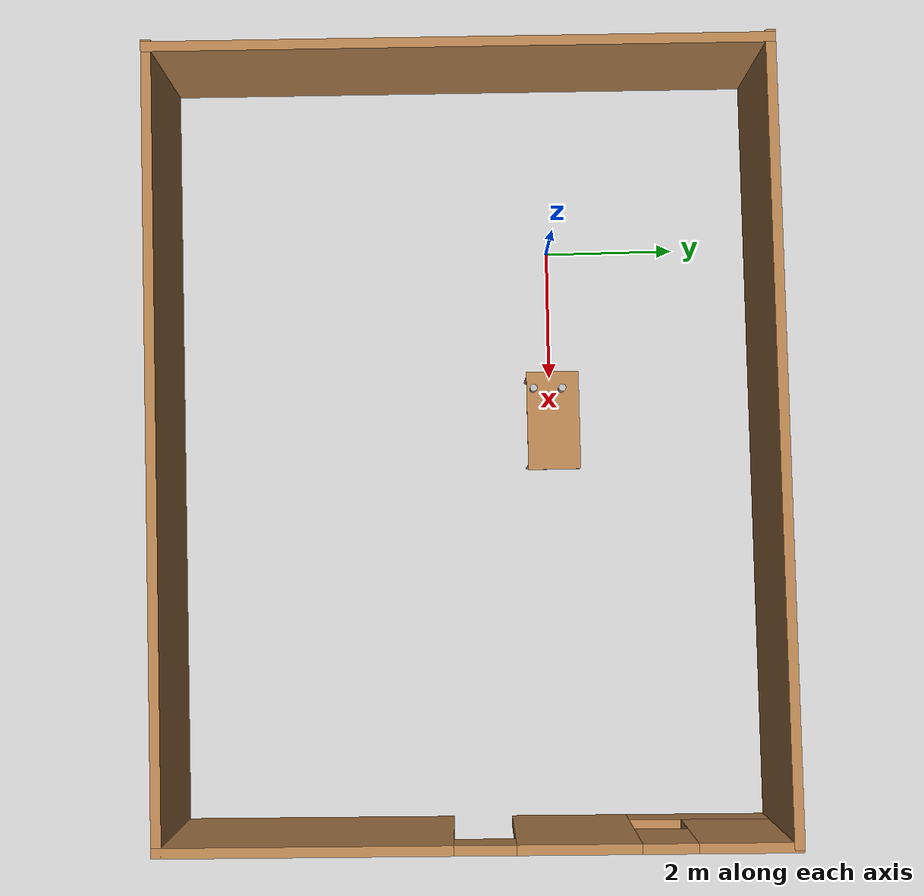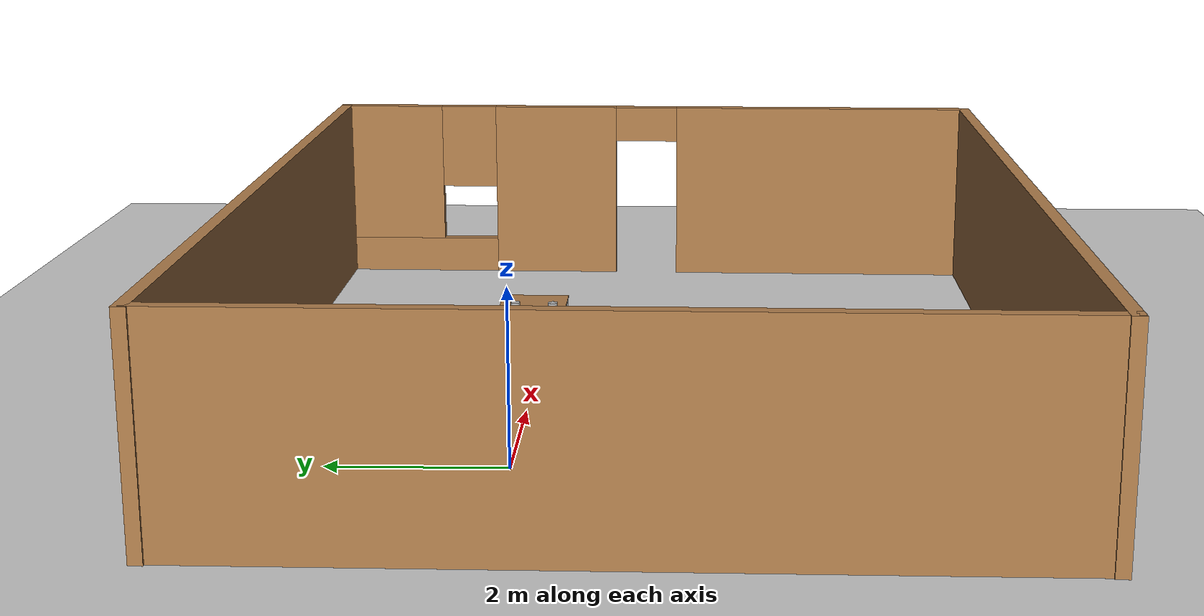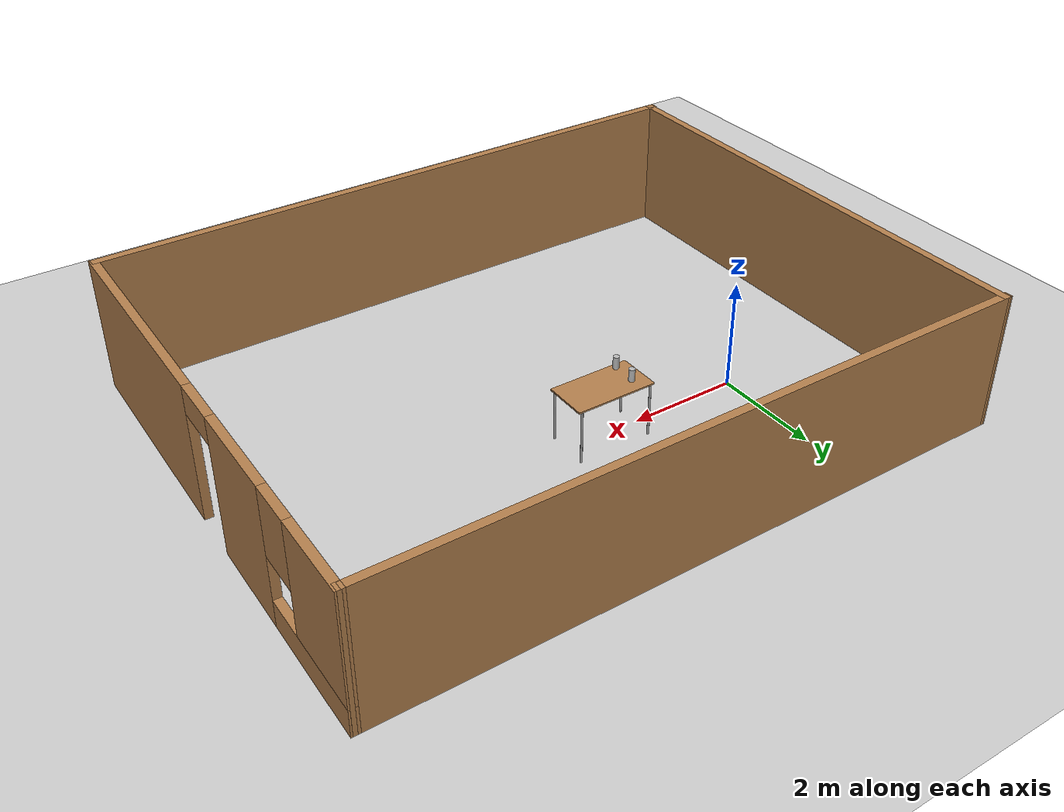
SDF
<sdf version="1.6">
 <world name="default">
  <light name="sun" type="directional">
   <pose>0 0 10 0 -0 0</pose>
   <diffuse>0.8 0.8 0.8 1</diffuse>
   <specular>0.1 0.1 0.1 1</specular>
   <attenuation>
    <range>1000</range>
    <constant>0.9</constant>
    <linear>0.01</linear>
    <quadratic>0.001</quadratic>
   </attenuation>
   <direction>-0.5 0.5 -1</direction>
  </light>
  <gravity>0 0 -9.8</gravity>
  <magnetic_field>6e-06 2.3e-05 -4.2e-05</magnetic_field>
  <atmosphere type="adiabatic"/>
  <physics name="default_physics" default="0" type="ode">
   <max_step_size>0.001</max_step_size>
   <real_time_factor>1</real_time_factor>
   <real_time_update_rate>1000</real_time_update_rate>
  </physics>
  <scene><ambient>0.4 0.4 0.4 1</ambient><background>0.7 0.7 0.7 1</background><shadows>1</shadows></scene>
  <spherical_coordinates>
   <surface_model>EARTH_WGS84</surface_model>
   <latitude_deg>0</latitude_deg>
   <longitude_deg>0</longitude_deg>
   <elevation>0</elevation>
   <heading_deg>0</heading_deg>
  </spherical_coordinates>
  <model name="test">
   <pose>3.11511 -1.32327 0 0 -0 0</pose>
   <link name="Wall_0">
    <collision name="Wall_0_Collision">
     <geometry><box><size>11.8635 0.15 2.5</size></box></geometry>
     <pose>0 0 1.25 0 -0 0</pose>
    </collision>
    <visual name="Wall_0_Visual">
     <pose>0 0 1.25 0 -0 0</pose>
     <geometry><box><size>11.8635 0.15 2.5</size></box></geometry>
     <material>
      <script><uri>file://media/materials/scripts/gazebo.material</uri><name>Gazebo/Wood</name></script>
      <ambient>1 1 1 1</ambient>
     </material>
     <meta><layer>0</layer></meta>
    </visual>
    <pose>0.013463 4.5716 0 0 0 -3.14018</pose>
   </link>
   <link name="Wall_1">
    <collision name="Wall_1_Collision">
     <geometry><box><size>9.29344 0.15 2.5</size></box></geometry>
     <pose>0 0 1.25 0 -0 0</pose>
    </collision>
    <visual name="Wall_1_Visual">
     <pose>0 0 1.25 0 -0 0</pose>
     <geometry><box><size>9.29344 0.15 2.5</size></box></geometry>
     <material>
      <script><uri>file://media/materials/scripts/gazebo.material</uri><name>Gazebo/Wood</name></script>
      <ambient>1 1 1 1</ambient>
     </material>
     <meta><layer>0</layer></meta>
    </visual>
    <pose>-5.84395 -0.008399 0 0 0 -1.5776</pose>
   </link>
   <link name="Wall_2">
    <collision name="Wall_2_Collision">
     <geometry><box><size>11.8003 0.15 2.5</size></box></geometry>
     <pose>0 0 1.25 0 -0 0</pose>
    </collision>
    <visual name="Wall_2_Visual">
     <pose>0 0 1.25 0 -0 0</pose>
     <geometry><box><size>11.8003 0.15 2.5</size></box></geometry>
     <material>
      <script><uri>file://media/materials/scripts/gazebo.material</uri><name>Gazebo/Wood</name></script>
      <ambient>1 1 1 1</ambient>
     </material>
     <meta><layer>0</layer></meta>
    </visual>
    <pose>-0.076389 -4.57179 0 0 -0 0.001425</pose>
   </link>
   <link name="Wall_3">
    <pose>5.83789 0.008202 0 0 -0 1.55708</pose>
    <visual name="Wall_3_Visual_0">
     <pose>-2.4968 0 1.25 0 -0 0</pose>
     <geometry><box><size>4.29986 0.15 2.5</size></box></geometry>
     <material>
      <script><uri>file://media/materials/scripts/gazebo.material</uri><name>Gazebo/Wood</name></script>
      <ambient>1 1 1 1</ambient>
     </material>
     <meta><layer>0</layer></meta>
    </visual>
    <collision name="Wall_3_Collision_0">
     <geometry><box><size>4.29986 0.15 2.5</size></box></geometry>
     <pose>-2.4968 0 1.25 0 -0 0</pose>
    </collision>
    <visual name="Wall_3_Visual_1">
     <pose>1.44758 0 1.25 0 -0 0</pose>
     <geometry><box><size>1.78888 0.15 2.5</size></box></geometry>
     <material>
      <script><uri>file://media/materials/scripts/gazebo.material</uri><name>Gazebo/Wood</name></script>
      <ambient>1 1 1 1</ambient>
     </material>
     <meta><layer>0</layer></meta>
    </visual>
    <collision name="Wall_3_Collision_1">
     <geometry><box><size>1.78888 0.15 2.5</size></box></geometry>
     <pose>1.44758 0 1.25 0 -0 0</pose>
    </collision>
    <visual name="Wall_3_Visual_2">
     <pose>3.49437 0 0.25 0 -0 0</pose>
     <geometry><box><size>2.30471 0.15 0.5</size></box></geometry>
     <material>
      <script><uri>file://media/materials/scripts/gazebo.material</uri><name>Gazebo/Wood</name></script>
      <ambient>1 1 1 1</ambient>
     </material>
     <meta><layer>0</layer></meta>
    </visual>
    <collision name="Wall_3_Collision_2">
     <geometry><box><size>2.30471 0.15 0.5</size></box></geometry>
     <pose>3.49437 0 0.25 0 -0 0</pose>
    </collision>
    <visual name="Wall_3_Visual_3">
     <pose>3.89437 0 1.5 0 -0 0</pose>
     <geometry><box><size>1.50471 0.15 2</size></box></geometry>
     <material>
      <script><uri>file://media/materials/scripts/gazebo.material</uri><name>Gazebo/Wood</name></script>
      <ambient>1 1 1 1</ambient>
     </material>
     <meta><layer>0</layer></meta>
    </visual>
    <collision name="Wall_3_Collision_3">
     <geometry><box><size>1.50471 0.15 2</size></box></geometry>
     <pose>3.89437 0 1.5 0 -0 0</pose>
    </collision>
    <visual name="Wall_3_Visual_4">
     <pose>2.74201 0 1.9 0 -0 0</pose>
     <geometry><box><size>0.8 0.15 1.2</size></box></geometry>
     <material>
      <script><uri>file://media/materials/scripts/gazebo.material</uri><name>Gazebo/Wood</name></script>
      <ambient>1 1 1 1</ambient>
     </material>
     <meta><layer>0</layer></meta>
    </visual>
    <collision name="Wall_3_Collision_4">
     <geometry><box><size>0.8 0.15 1.2</size></box></geometry>
     <pose>2.74201 0 1.9 0 -0 0</pose>
    </collision>
    <visual name="Wall_3_Visual_5">
     <pose>0.103134 0 2.25 0 -0 0</pose>
     <geometry><box><size>0.9 0.15 0.5</size></box></geometry>
     <material>
      <script><uri>file://media/materials/scripts/gazebo.material</uri><name>Gazebo/Wood</name></script>
      <ambient>1 1 1 1</ambient>
     </material>
     <meta><layer>0</layer></meta>
    </visual>
    <collision name="Wall_3_Collision_5">
     <geometry><box><size>0.9 0.15 0.5</size></box></geometry>
     <pose>0.103134 0 2.25 0 -0 0</pose>
    </collision>
   </link>
   <static>1</static>
  </model>
  <model name="table">
   <static>1</static>
   <link name="link">
    <collision name="surface">
     <pose>0 0 1 0 -0 0</pose>
     <geometry><box><size>1.5 0.8 0.03</size></box></geometry>
     <surface><friction><ode><mu>0.6</mu><mu2>0.6</mu2></ode></friction></surface>
    </collision>
    <visual name="visual1">
     <pose>0 0 1 0 -0 0</pose>
     <geometry><box><size>1.5 0.8 0.03</size></box></geometry>
     <material>
      <script><uri>file://media/materials/scripts/gazebo.material</uri><name>Gazebo/Wood</name></script>
     </material>
    </visual>
    <collision name="front_left_leg">
     <pose>0.68 0.38 0.5 0 -0 0</pose>
     <geometry><cylinder><radius>0.02</radius><length>1</length></cylinder></geometry>
    </collision>
    <visual name="front_left_leg">
     <pose>0.68 0.38 0.5 0 -0 0</pose>
     <geometry><cylinder><radius>0.02</radius><length>1</length></cylinder></geometry>
     <material>
      <script><uri>file://media/materials/scripts/gazebo.material</uri><name>Gazebo/Grey</name></script>
     </material>
    </visual>
    <collision name="front_right_leg">
     <pose>0.68 -0.38 0.5 0 -0 0</pose>
     <geometry><cylinder><radius>0.02</radius><length>1</length></cylinder></geometry>
    </collision>
    <visual name="front_right_leg">
     <pose>0.68 -0.38 0.5 0 -0 0</pose>
     <geometry><cylinder><radius>0.02</radius><length>1</length></cylinder></geometry>
     <material>
      <script><uri>file://media/materials/scripts/gazebo.material</uri><name>Gazebo/Grey</name></script>
     </material>
    </visual>
    <collision name="back_right_leg">
     <pose>-0.68 -0.38 0.5 0 -0 0</pose>
     <geometry><cylinder><radius>0.02</radius><length>1</length></cylinder></geometry>
    </collision>
    <visual name="back_right_leg">
     <pose>-0.68 -0.38 0.5 0 -0 0</pose>
     <geometry><cylinder><radius>0.02</radius><length>1</length></cylinder></geometry>
     <material>
      <script><uri>file://media/materials/scripts/gazebo.material</uri><name>Gazebo/Grey</name></script>
     </material>
    </visual>
    <collision name="back_left_leg">
     <pose>-0.68 0.38 0.5 0 -0 0</pose>
     <geometry><cylinder><radius>0.02</radius><length>1</length></cylinder></geometry>
    </collision>
    <visual name="back_left_leg">
     <pose>-0.68 0.38 0.5 0 -0 0</pose>
     <geometry><cylinder><radius>0.02</radius><length>1</length></cylinder></geometry>
     <material>
      <script><uri>file://media/materials/scripts/gazebo.material</uri><name>Gazebo/Grey</name></script>
     </material>
    </visual>
   </link>
   <pose>2.74669 -0.002591 0 0 -0 0</pose>
  </model>
  <model name="ground_plane">
   <static>1</static>
   <link name="link">
    <collision name="collision">
     <geometry><plane><normal>0 0 1</normal><size>100 100</size></plane></geometry>
     <surface><friction><ode><mu>100</mu><mu2>50</mu2></ode></friction></surface>
    </collision>
    <visual name="visual">
     <cast_shadows>0</cast_shadows>
     <geometry><plane><normal>0 0 1</normal><size>100 100</size></plane></geometry>
     <material>
      <script><uri>file://media/materials/scripts/gazebo.material</uri><name>Gazebo/Grey</name></script>
     </material>
    </visual>
   </link>
   <pose>3.22666 -1.90979 0 0 -0 0</pose>
  </model>
  <model name="beer">
   <link name="link">
    <pose>0 0 0.115 0 -0 0</pose>
    <inertial>
     <mass>0.39</mass>
     <inertia><ixx>0.00058</ixx><ixy>0</ixy><ixz>0</ixz><iyy>0.00058</iyy><iyz>0</iyz><izz>0.00019</izz></inertia>
    </inertial>
    <collision name="collision">
     <geometry><cylinder><radius>0.055</radius><length>0.23</length></cylinder></geometry>
    </collision>
    <visual name="visual">
     <geometry><cylinder><radius>0.055</radius><length>0.23</length></cylinder></geometry>
     <material>
      <script>
       <uri>model://beer/materials/scripts</uri>
       <uri>model://beer/materials/textures</uri>
       <name>Beer/Diffuse</name>
      </script>
     </material>
    </visual>
   </link>
   <pose>2.25924 -0.301739 1.015 1.3e-05 8e-05 -1.3e-05</pose>
  </model>
  <model name="beer_0">
   <link name="link">
    <pose>0 0 0.115 0 -0 0</pose>
    <inertial>
     <mass>0.39</mass>
     <inertia><ixx>0.00058</ixx><ixy>0</ixy><ixz>0</ixz><iyy>0.00058</iyy><iyz>0</iyz><izz>0.00019</izz></inertia>
    </inertial>
    <collision name="collision">
     <geometry><cylinder><radius>0.055</radius><length>0.23</length></cylinder></geometry>
    </collision>
    <visual name="visual">
     <geometry><cylinder><radius>0.055</radius><length>0.23</length></cylinder></geometry>
     <material>
      <script>
       <uri>model://beer/materials/scripts</uri>
       <uri>model://beer/materials/textures</uri>
       <name>Beer/Diffuse</name>
      </script>
     </material>
    </visual>
   </link>
   <pose>2.26628 0.134521 1.01499 1e-06 -2.7e-05 6.9e-05</pose>
  </model>
 </world>
</sdf>
